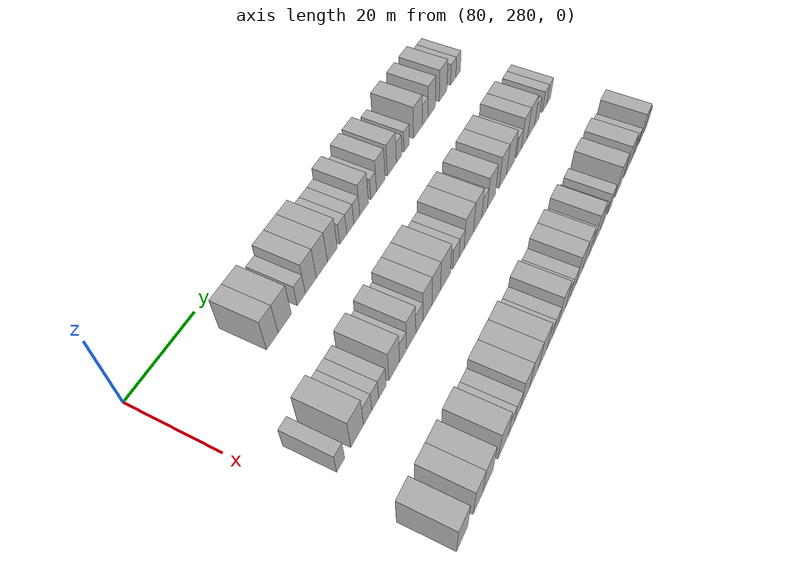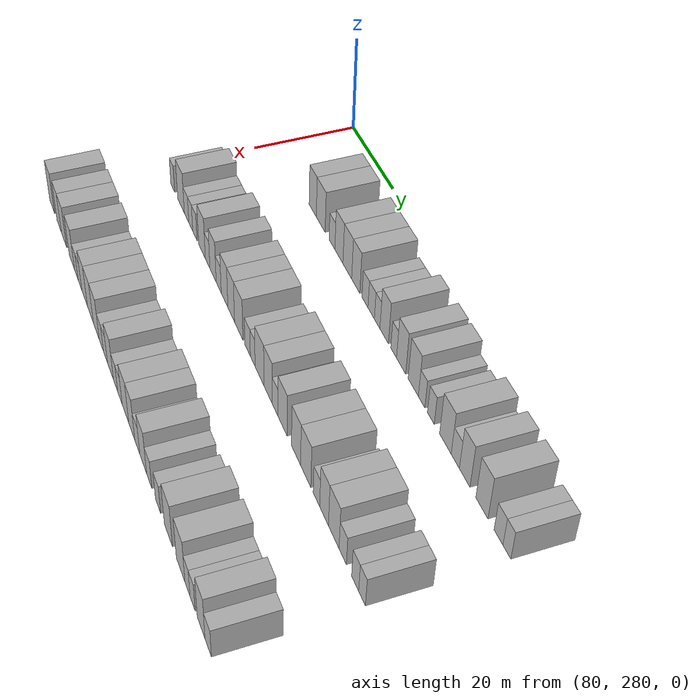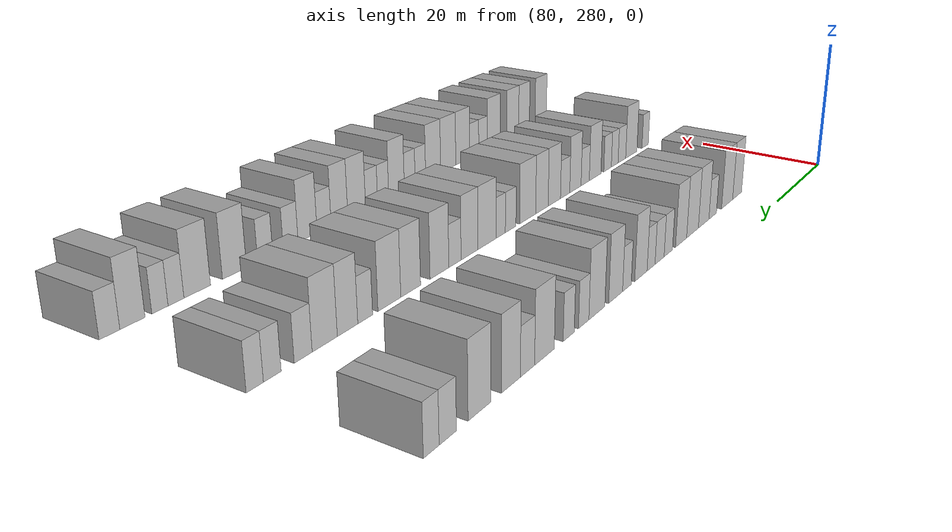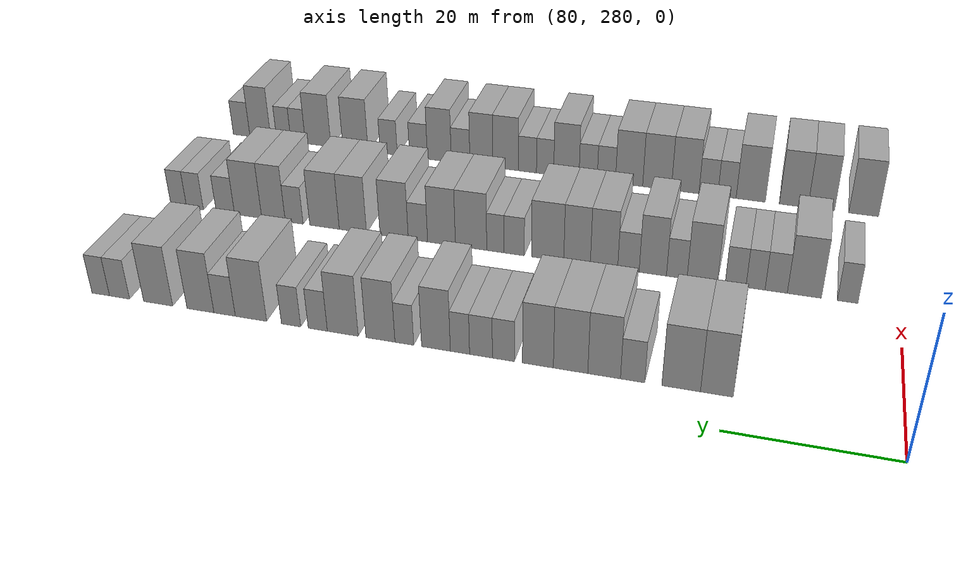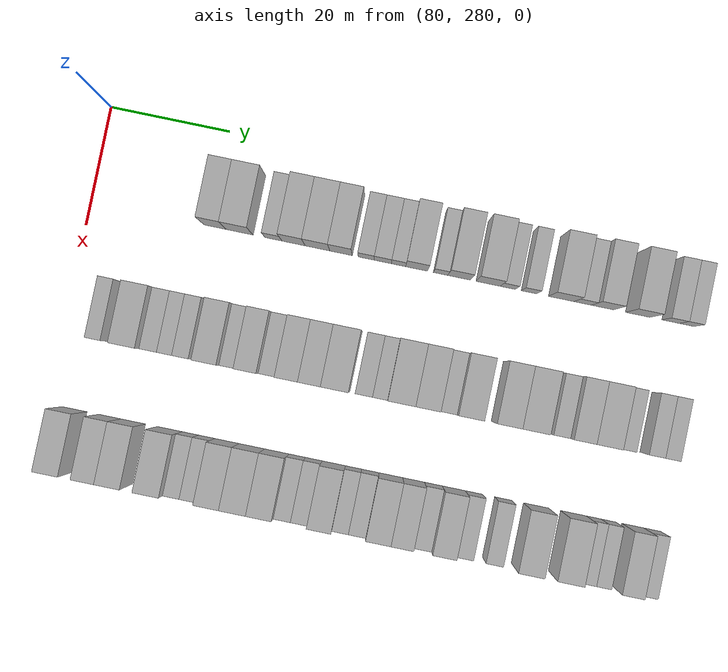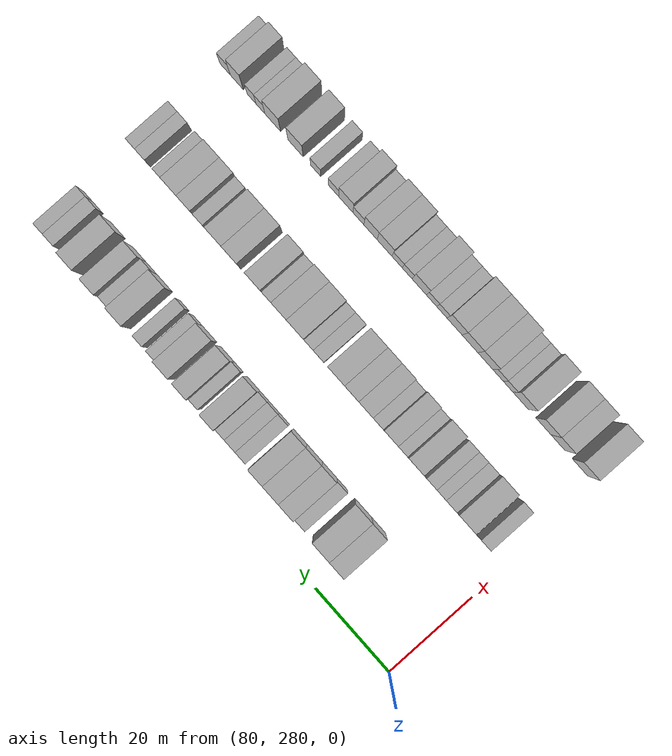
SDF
<sdf version="1.6">
 <world name="default">
  <model name="building_706">
   <static>1</static>
   <pose>91.0000 300.9386 0 0.000000 0.000000 0.000000</pose>
   <link name="link">
    <pose>0 0 4.50 0 0 0</pose>
    <collision name="collision"><geometry><box><size>10.0000 3.7510 9.0000</size></box></geometry></collision>
    <visual name="visual">
     <cast_shadows>0</cast_shadows>
     <geometry><box><size>10.0000 3.7510 9.0000</size></box></geometry>
     <material>
      <script>
       <uri>model://HANNAS_wall/materials/scripts</uri>
       <uri>model://HANNAS_wall/materials/textures</uri>
       <name>vrc/HANNAS_wall</name>
      </script>
     </material>
    </visual>
   </link>
  </model>
  <model name="building_707">
   <static>1</static>
   <pose>91.0000 305.0551 0 0.000000 0.000000 0.000000</pose>
   <link name="link">
    <pose>0 0 4.50 0 0 0</pose>
    <collision name="collision"><geometry><box><size>10.0000 4.4821 9.0000</size></box></geometry></collision>
    <visual name="visual">
     <cast_shadows>0</cast_shadows>
     <geometry><box><size>10.0000 4.4821 9.0000</size></box></geometry>
     <material>
      <script>
       <uri>model://HANNAS_wall/materials/scripts</uri>
       <uri>model://HANNAS_wall/materials/textures</uri>
       <name>vrc/HANNAS_wall</name>
      </script>
     </material>
    </visual>
   </link>
  </model>
  <model name="building_708">
   <static>1</static>
   <pose>91.0000 310.7281 0 0.000000 0.000000 0.000000</pose>
   <link name="link">
    <pose>0 0 3.00 0 0 0</pose>
    <collision name="collision"><geometry><box><size>10.0000 2.8638 6.0000</size></box></geometry></collision>
    <visual name="visual">
     <cast_shadows>0</cast_shadows>
     <geometry><box><size>10.0000 2.8638 6.0000</size></box></geometry>
     <material>
      <script>
       <uri>model://HANNAS_wall/materials/scripts</uri>
       <uri>model://HANNAS_wall/materials/textures</uri>
       <name>vrc/HANNAS_wall</name>
      </script>
     </material>
    </visual>
   </link>
  </model>
  <model name="building_709">
   <static>1</static>
   <pose>91.0000 314.1070 0 0.000000 0.000000 0.000000</pose>
   <link name="link">
    <pose>0 0 4.50 0 0 0</pose>
    <collision name="collision"><geometry><box><size>10.0000 3.8940 9.0000</size></box></geometry></collision>
    <visual name="visual">
     <cast_shadows>0</cast_shadows>
     <geometry><box><size>10.0000 3.8940 9.0000</size></box></geometry>
     <material>
      <script>
       <uri>model://HANNAS_wall/materials/scripts</uri>
       <uri>model://HANNAS_wall/materials/textures</uri>
       <name>vrc/HANNAS_wall</name>
      </script>
     </material>
    </visual>
   </link>
  </model>
  <model name="building_710">
   <static>1</static>
   <pose>91.0000 318.1283 0 0.000000 0.000000 0.000000</pose>
   <link name="link">
    <pose>0 0 4.50 0 0 0</pose>
    <collision name="collision"><geometry><box><size>10.0000 4.1487 9.0000</size></box></geometry></collision>
    <visual name="visual">
     <cast_shadows>0</cast_shadows>
     <geometry><box><size>10.0000 4.1487 9.0000</size></box></geometry>
     <material>
      <script>
       <uri>model://HANNAS_wall/materials/scripts</uri>
       <uri>model://HANNAS_wall/materials/textures</uri>
       <name>vrc/HANNAS_wall</name>
      </script>
     </material>
    </visual>
   </link>
  </model>
  <model name="building_711">
   <static>1</static>
   <pose>91.0000 322.0877 0 0.000000 0.000000 0.000000</pose>
   <link name="link">
    <pose>0 0 4.50 0 0 0</pose>
    <collision name="collision"><geometry><box><size>10.0000 3.7700 9.0000</size></box></geometry></collision>
    <visual name="visual">
     <cast_shadows>0</cast_shadows>
     <geometry><box><size>10.0000 3.7700 9.0000</size></box></geometry>
     <material>
      <script>
       <uri>model://HANNAS_wall/materials/scripts</uri>
       <uri>model://HANNAS_wall/materials/textures</uri>
       <name>vrc/HANNAS_wall</name>
      </script>
     </material>
    </visual>
   </link>
  </model>
  <model name="building_712">
   <static>1</static>
   <pose>91.0000 326.3274 0 0.000000 0.000000 0.000000</pose>
   <link name="link">
    <pose>0 0 3.00 0 0 0</pose>
    <collision name="collision"><geometry><box><size>10.0000 2.7094 6.0000</size></box></geometry></collision>
    <visual name="visual">
     <cast_shadows>0</cast_shadows>
     <geometry><box><size>10.0000 2.7094 6.0000</size></box></geometry>
     <material>
      <script>
       <uri>model://HANNAS_wall/materials/scripts</uri>
       <uri>model://HANNAS_wall/materials/textures</uri>
       <name>vrc/HANNAS_wall</name>
      </script>
     </material>
    </visual>
   </link>
  </model>
  <model name="building_713">
   <static>1</static>
   <pose>91.0000 329.1058 0 0.000000 0.000000 0.000000</pose>
   <link name="link">
    <pose>0 0 3.00 0 0 0</pose>
    <collision name="collision"><geometry><box><size>10.0000 2.8475 6.0000</size></box></geometry></collision>
    <visual name="visual">
     <cast_shadows>0</cast_shadows>
     <geometry><box><size>10.0000 2.8475 6.0000</size></box></geometry>
     <material>
      <script>
       <uri>model://HANNAS_wall/materials/scripts</uri>
       <uri>model://HANNAS_wall/materials/textures</uri>
       <name>vrc/HANNAS_wall</name>
      </script>
     </material>
    </visual>
   </link>
  </model>
  <model name="building_714">
   <static>1</static>
   <pose>91.0000 331.7358 0 0.000000 0.000000 0.000000</pose>
   <link name="link">
    <pose>0 0 3.00 0 0 0</pose>
    <collision name="collision"><geometry><box><size>10.0000 2.4125 6.0000</size></box></geometry></collision>
    <visual name="visual">
     <cast_shadows>0</cast_shadows>
     <geometry><box><size>10.0000 2.4125 6.0000</size></box></geometry>
     <material>
      <script>
       <uri>model://HANNAS_wall/materials/scripts</uri>
       <uri>model://HANNAS_wall/materials/textures</uri>
       <name>vrc/HANNAS_wall</name>
      </script>
     </material>
    </visual>
   </link>
  </model>
  <model name="building_715">
   <static>1</static>
   <pose>91.0000 334.7630 0 0.000000 0.000000 0.000000</pose>
   <link name="link">
    <pose>0 0 4.50 0 0 0</pose>
    <collision name="collision"><geometry><box><size>10.0000 3.6418 9.0000</size></box></geometry></collision>
    <visual name="visual">
     <cast_shadows>0</cast_shadows>
     <geometry><box><size>10.0000 3.6418 9.0000</size></box></geometry>
     <material>
      <script>
       <uri>model://HANNAS_wall/materials/scripts</uri>
       <uri>model://HANNAS_wall/materials/textures</uri>
       <name>vrc/HANNAS_wall</name>
      </script>
     </material>
    </visual>
   </link>
  </model>
  <model name="building_716">
   <static>1</static>
   <pose>91.0000 338.7896 0 0.000000 0.000000 0.000000</pose>
   <link name="link">
    <pose>0 0 3.00 0 0 0</pose>
    <collision name="collision"><geometry><box><size>10.0000 2.4115 6.0000</size></box></geometry></collision>
    <visual name="visual">
     <cast_shadows>0</cast_shadows>
     <geometry><box><size>10.0000 2.4115 6.0000</size></box></geometry>
     <material>
      <script>
       <uri>model://HANNAS_wall/materials/scripts</uri>
       <uri>model://HANNAS_wall/materials/textures</uri>
       <name>vrc/HANNAS_wall</name>
      </script>
     </material>
    </visual>
   </link>
  </model>
  <model name="building_717">
   <static>1</static>
   <pose>91.0000 341.8738 0 0.000000 0.000000 0.000000</pose>
   <link name="link">
    <pose>0 0 4.50 0 0 0</pose>
    <collision name="collision"><geometry><box><size>10.0000 3.7569 9.0000</size></box></geometry></collision>
    <visual name="visual">
     <cast_shadows>0</cast_shadows>
     <geometry><box><size>10.0000 3.7569 9.0000</size></box></geometry>
     <material>
      <script>
       <uri>model://HANNAS_wall/materials/scripts</uri>
       <uri>model://HANNAS_wall/materials/textures</uri>
       <name>vrc/HANNAS_wall</name>
      </script>
     </material>
    </visual>
   </link>
  </model>
  <model name="building_718">
   <static>1</static>
   <pose>91.0000 346.7793 0 0.000000 0.000000 0.000000</pose>
   <link name="link">
    <pose>0 0 4.50 0 0 0</pose>
    <collision name="collision"><geometry><box><size>10.0000 4.0541 9.0000</size></box></geometry></collision>
    <visual name="visual">
     <cast_shadows>0</cast_shadows>
     <geometry><box><size>10.0000 4.0541 9.0000</size></box></geometry>
     <material>
      <script>
       <uri>model://HANNAS_wall/materials/scripts</uri>
       <uri>model://HANNAS_wall/materials/textures</uri>
       <name>vrc/HANNAS_wall</name>
      </script>
     </material>
    </visual>
   </link>
  </model>
  <model name="building_719">
   <static>1</static>
   <pose>91.0000 350.0730 0 0.000000 0.000000 0.000000</pose>
   <link name="link">
    <pose>0 0 3.00 0 0 0</pose>
    <collision name="collision"><geometry><box><size>10.0000 2.5332 6.0000</size></box></geometry></collision>
    <visual name="visual">
     <cast_shadows>0</cast_shadows>
     <geometry><box><size>10.0000 2.5332 6.0000</size></box></geometry>
     <material>
      <script>
       <uri>model://HANNAS_wall/materials/scripts</uri>
       <uri>model://HANNAS_wall/materials/textures</uri>
       <name>vrc/HANNAS_wall</name>
      </script>
     </material>
    </visual>
   </link>
  </model>
  <model name="building_720">
   <static>1</static>
   <pose>91.0000 353.6286 0 0.000000 0.000000 0.000000</pose>
   <link name="link">
    <pose>0 0 3.00 0 0 0</pose>
    <collision name="collision"><geometry><box><size>10.0000 2.5779 6.0000</size></box></geometry></collision>
    <visual name="visual">
     <cast_shadows>0</cast_shadows>
     <geometry><box><size>10.0000 2.5779 6.0000</size></box></geometry>
     <material>
      <script>
       <uri>model://HANNAS_wall/materials/scripts</uri>
       <uri>model://HANNAS_wall/materials/textures</uri>
       <name>vrc/HANNAS_wall</name>
      </script>
     </material>
    </visual>
   </link>
  </model>
  <model name="building_721">
   <static>1</static>
   <pose>91.0000 359.0453 0 0.000000 0.000000 0.000000</pose>
   <link name="link">
    <pose>0 0 4.50 0 0 0</pose>
    <collision name="collision"><geometry><box><size>10.0000 4.2555 9.0000</size></box></geometry></collision>
    <visual name="visual">
     <cast_shadows>0</cast_shadows>
     <geometry><box><size>10.0000 4.2555 9.0000</size></box></geometry>
     <material>
      <script>
       <uri>model://HANNAS_wall/materials/scripts</uri>
       <uri>model://HANNAS_wall/materials/textures</uri>
       <name>vrc/HANNAS_wall</name>
      </script>
     </material>
    </visual>
   </link>
  </model>
  <model name="building_722">
   <static>1</static>
   <pose>91.0000 362.6410 0 0.000000 0.000000 0.000000</pose>
   <link name="link">
    <pose>0 0 3.00 0 0 0</pose>
    <collision name="collision"><geometry><box><size>10.0000 2.9361 6.0000</size></box></geometry></collision>
    <visual name="visual">
     <cast_shadows>0</cast_shadows>
     <geometry><box><size>10.0000 2.9361 6.0000</size></box></geometry>
     <material>
      <script>
       <uri>model://HANNAS_wall/materials/scripts</uri>
       <uri>model://HANNAS_wall/materials/textures</uri>
       <name>vrc/HANNAS_wall</name>
      </script>
     </material>
    </visual>
   </link>
  </model>
  <model name="building_723">
   <static>1</static>
   <pose>91.0000 365.9729 0 0.000000 0.000000 0.000000</pose>
   <link name="link">
    <pose>0 0 4.50 0 0 0</pose>
    <collision name="collision"><geometry><box><size>10.0000 3.7276 9.0000</size></box></geometry></collision>
    <visual name="visual">
     <cast_shadows>0</cast_shadows>
     <geometry><box><size>10.0000 3.7276 9.0000</size></box></geometry>
     <material>
      <script>
       <uri>model://HANNAS_wall/materials/scripts</uri>
       <uri>model://HANNAS_wall/materials/textures</uri>
       <name>vrc/HANNAS_wall</name>
      </script>
     </material>
    </visual>
   </link>
  </model>
  <model name="building_724">
   <static>1</static>
   <pose>91.0000 371.8812 0 0.000000 0.000000 0.000000</pose>
   <link name="link">
    <pose>0 0 4.50 0 0 0</pose>
    <collision name="collision"><geometry><box><size>10.0000 4.0890 9.0000</size></box></geometry></collision>
    <visual name="visual">
     <cast_shadows>0</cast_shadows>
     <geometry><box><size>10.0000 4.0890 9.0000</size></box></geometry>
     <material>
      <script>
       <uri>model://HANNAS_wall/materials/scripts</uri>
       <uri>model://HANNAS_wall/materials/textures</uri>
       <name>vrc/HANNAS_wall</name>
      </script>
     </material>
    </visual>
   </link>
  </model>
  <model name="building_725">
   <static>1</static>
   <pose>91.0000 377.3607 0 0.000000 0.000000 0.000000</pose>
   <link name="link">
    <pose>0 0 3.00 0 0 0</pose>
    <collision name="collision"><geometry><box><size>10.0000 2.8699 6.0000</size></box></geometry></collision>
    <visual name="visual">
     <cast_shadows>0</cast_shadows>
     <geometry><box><size>10.0000 2.8699 6.0000</size></box></geometry>
     <material>
      <script>
       <uri>model://HANNAS_wall/materials/scripts</uri>
       <uri>model://HANNAS_wall/materials/textures</uri>
       <name>vrc/HANNAS_wall</name>
      </script>
     </material>
    </visual>
   </link>
  </model>
  <model name="building_726">
   <static>1</static>
   <pose>91.0000 380.0553 0 0.000000 0.000000 0.000000</pose>
   <link name="link">
    <pose>0 0 3.00 0 0 0</pose>
    <collision name="collision"><geometry><box><size>10.0000 2.5194 6.0000</size></box></geometry></collision>
    <visual name="visual">
     <cast_shadows>0</cast_shadows>
     <geometry><box><size>10.0000 2.5194 6.0000</size></box></geometry>
     <material>
      <script>
       <uri>model://HANNAS_wall/materials/scripts</uri>
       <uri>model://HANNAS_wall/materials/textures</uri>
       <name>vrc/HANNAS_wall</name>
      </script>
     </material>
    </visual>
   </link>
  </model>
  <model name="building_889">
   <static>1</static>
   <pose>113.0000 286.5399 0 0.000000 0.000000 0.000000</pose>
   <link name="link">
    <pose>0 0 3.00 0 0 0</pose>
    <collision name="collision"><geometry><box><size>10.0000 2.5526 6.0000</size></box></geometry></collision>
    <visual name="visual">
     <cast_shadows>0</cast_shadows>
     <geometry><box><size>10.0000 2.5526 6.0000</size></box></geometry>
     <material>
      <script>
       <uri>model://HANNAS_wall/materials/scripts</uri>
       <uri>model://HANNAS_wall/materials/textures</uri>
       <name>vrc/HANNAS_wall</name>
      </script>
     </material>
    </visual>
   </link>
  </model>
  <model name="building_890">
   <static>1</static>
   <pose>113.0000 291.9709 0 0.000000 0.000000 0.000000</pose>
   <link name="link">
    <pose>0 0 4.50 0 0 0</pose>
    <collision name="collision"><geometry><box><size>10.0000 4.3093 9.0000</size></box></geometry></collision>
    <visual name="visual">
     <cast_shadows>0</cast_shadows>
     <geometry><box><size>10.0000 4.3093 9.0000</size></box></geometry>
     <material>
      <script>
       <uri>model://HANNAS_wall/materials/scripts</uri>
       <uri>model://HANNAS_wall/materials/textures</uri>
       <name>vrc/HANNAS_wall</name>
      </script>
     </material>
    </visual>
   </link>
  </model>
  <model name="building_891">
   <static>1</static>
   <pose>113.0000 295.5459 0 0.000000 0.000000 0.000000</pose>
   <link name="link">
    <pose>0 0 3.00 0 0 0</pose>
    <collision name="collision"><geometry><box><size>10.0000 2.8409 6.0000</size></box></geometry></collision>
    <visual name="visual">
     <cast_shadows>0</cast_shadows>
     <geometry><box><size>10.0000 2.8409 6.0000</size></box></geometry>
     <material>
      <script>
       <uri>model://HANNAS_wall/materials/scripts</uri>
       <uri>model://HANNAS_wall/materials/textures</uri>
       <name>vrc/HANNAS_wall</name>
      </script>
     </material>
    </visual>
   </link>
  </model>
  <model name="building_892">
   <static>1</static>
   <pose>113.0000 298.1935 0 0.000000 0.000000 0.000000</pose>
   <link name="link">
    <pose>0 0 3.00 0 0 0</pose>
    <collision name="collision"><geometry><box><size>10.0000 2.4542 6.0000</size></box></geometry></collision>
    <visual name="visual">
     <cast_shadows>0</cast_shadows>
     <geometry><box><size>10.0000 2.4542 6.0000</size></box></geometry>
     <material>
      <script>
       <uri>model://HANNAS_wall/materials/scripts</uri>
       <uri>model://HANNAS_wall/materials/textures</uri>
       <name>vrc/HANNAS_wall</name>
      </script>
     </material>
    </visual>
   </link>
  </model>
  <model name="building_893">
   <static>1</static>
   <pose>113.0000 300.7677 0 0.000000 0.000000 0.000000</pose>
   <link name="link">
    <pose>0 0 3.00 0 0 0</pose>
    <collision name="collision"><geometry><box><size>10.0000 2.6943 6.0000</size></box></geometry></collision>
    <visual name="visual">
     <cast_shadows>0</cast_shadows>
     <geometry><box><size>10.0000 2.6943 6.0000</size></box></geometry>
     <material>
      <script>
       <uri>model://HANNAS_wall/materials/scripts</uri>
       <uri>model://HANNAS_wall/materials/textures</uri>
       <name>vrc/HANNAS_wall</name>
      </script>
     </material>
    </visual>
   </link>
  </model>
  <model name="building_894">
   <static>1</static>
   <pose>113.0000 305.1009 0 0.000000 0.000000 0.000000</pose>
   <link name="link">
    <pose>0 0 4.50 0 0 0</pose>
    <collision name="collision"><geometry><box><size>10.0000 3.9721 9.0000</size></box></geometry></collision>
    <visual name="visual">
     <cast_shadows>0</cast_shadows>
     <geometry><box><size>10.0000 3.9721 9.0000</size></box></geometry>
     <material>
      <script>
       <uri>model://HANNAS_wall/materials/scripts</uri>
       <uri>model://HANNAS_wall/materials/textures</uri>
       <name>vrc/HANNAS_wall</name>
      </script>
     </material>
    </visual>
   </link>
  </model>
  <model name="building_895">
   <static>1</static>
   <pose>113.0000 308.4475 0 0.000000 0.000000 0.000000</pose>
   <link name="link">
    <pose>0 0 3.00 0 0 0</pose>
    <collision name="collision"><geometry><box><size>10.0000 2.7212 6.0000</size></box></geometry></collision>
    <visual name="visual">
     <cast_shadows>0</cast_shadows>
     <geometry><box><size>10.0000 2.7212 6.0000</size></box></geometry>
     <material>
      <script>
       <uri>model://HANNAS_wall/materials/scripts</uri>
       <uri>model://HANNAS_wall/materials/textures</uri>
       <name>vrc/HANNAS_wall</name>
      </script>
     </material>
    </visual>
   </link>
  </model>
  <model name="building_896">
   <static>1</static>
   <pose>113.0000 311.6290 0 0.000000 0.000000 0.000000</pose>
   <link name="link">
    <pose>0 0 4.50 0 0 0</pose>
    <collision name="collision"><geometry><box><size>10.0000 3.6418 9.0000</size></box></geometry></collision>
    <visual name="visual">
     <cast_shadows>0</cast_shadows>
     <geometry><box><size>10.0000 3.6418 9.0000</size></box></geometry>
     <material>
      <script>
       <uri>model://HANNAS_wall/materials/scripts</uri>
       <uri>model://HANNAS_wall/materials/textures</uri>
       <name>vrc/HANNAS_wall</name>
      </script>
     </material>
    </visual>
   </link>
  </model>
  <model name="building_897">
   <static>1</static>
   <pose>113.0000 314.8902 0 0.000000 0.000000 0.000000</pose>
   <link name="link">
    <pose>0 0 3.00 0 0 0</pose>
    <collision name="collision"><geometry><box><size>10.0000 2.8806 6.0000</size></box></geometry></collision>
    <visual name="visual">
     <cast_shadows>0</cast_shadows>
     <geometry><box><size>10.0000 2.8806 6.0000</size></box></geometry>
     <material>
      <script>
       <uri>model://HANNAS_wall/materials/scripts</uri>
       <uri>model://HANNAS_wall/materials/textures</uri>
       <name>vrc/HANNAS_wall</name>
      </script>
     </material>
    </visual>
   </link>
  </model>
  <model name="building_898">
   <static>1</static>
   <pose>113.0000 318.1858 0 0.000000 0.000000 0.000000</pose>
   <link name="link">
    <pose>0 0 4.50 0 0 0</pose>
    <collision name="collision"><geometry><box><size>10.0000 3.7106 9.0000</size></box></geometry></collision>
    <visual name="visual">
     <cast_shadows>0</cast_shadows>
     <geometry><box><size>10.0000 3.7106 9.0000</size></box></geometry>
     <material>
      <script>
       <uri>model://HANNAS_wall/materials/scripts</uri>
       <uri>model://HANNAS_wall/materials/textures</uri>
       <name>vrc/HANNAS_wall</name>
      </script>
     </material>
    </visual>
   </link>
  </model>
  <model name="building_899">
   <static>1</static>
   <pose>113.0000 321.8580 0 0.000000 0.000000 0.000000</pose>
   <link name="link">
    <pose>0 0 4.50 0 0 0</pose>
    <collision name="collision"><geometry><box><size>10.0000 3.6337 9.0000</size></box></geometry></collision>
    <visual name="visual">
     <cast_shadows>0</cast_shadows>
     <geometry><box><size>10.0000 3.6337 9.0000</size></box></geometry>
     <material>
      <script>
       <uri>model://HANNAS_wall/materials/scripts</uri>
       <uri>model://HANNAS_wall/materials/textures</uri>
       <name>vrc/HANNAS_wall</name>
      </script>
     </material>
    </visual>
   </link>
  </model>
  <model name="building_900">
   <static>1</static>
   <pose>113.0000 325.9070 0 0.000000 0.000000 0.000000</pose>
   <link name="link">
    <pose>0 0 4.50 0 0 0</pose>
    <collision name="collision"><geometry><box><size>10.0000 4.4644 9.0000</size></box></geometry></collision>
    <visual name="visual">
     <cast_shadows>0</cast_shadows>
     <geometry><box><size>10.0000 4.4644 9.0000</size></box></geometry>
     <material>
      <script>
       <uri>model://HANNAS_wall/materials/scripts</uri>
       <uri>model://HANNAS_wall/materials/textures</uri>
       <name>vrc/HANNAS_wall</name>
      </script>
     </material>
    </visual>
   </link>
  </model>
  <model name="building_901">
   <static>1</static>
   <pose>113.0000 330.5528 0 0.000000 0.000000 0.000000</pose>
   <link name="link">
    <pose>0 0 3.00 0 0 0</pose>
    <collision name="collision"><geometry><box><size>10.0000 2.8271 6.0000</size></box></geometry></collision>
    <visual name="visual">
     <cast_shadows>0</cast_shadows>
     <geometry><box><size>10.0000 2.8271 6.0000</size></box></geometry>
     <material>
      <script>
       <uri>model://HANNAS_wall/materials/scripts</uri>
       <uri>model://HANNAS_wall/materials/textures</uri>
       <name>vrc/HANNAS_wall</name>
      </script>
     </material>
    </visual>
   </link>
  </model>
  <model name="building_902">
   <static>1</static>
   <pose>113.0000 333.1883 0 0.000000 0.000000 0.000000</pose>
   <link name="link">
    <pose>0 0 3.00 0 0 0</pose>
    <collision name="collision"><geometry><box><size>10.0000 2.4438 6.0000</size></box></geometry></collision>
    <visual name="visual">
     <cast_shadows>0</cast_shadows>
     <geometry><box><size>10.0000 2.4438 6.0000</size></box></geometry>
     <material>
      <script>
       <uri>model://HANNAS_wall/materials/scripts</uri>
       <uri>model://HANNAS_wall/materials/textures</uri>
       <name>vrc/HANNAS_wall</name>
      </script>
     </material>
    </visual>
   </link>
  </model>
  <model name="building_903">
   <static>1</static>
   <pose>113.0000 336.6362 0 0.000000 0.000000 0.000000</pose>
   <link name="link">
    <pose>0 0 4.50 0 0 0</pose>
    <collision name="collision"><geometry><box><size>10.0000 4.4521 9.0000</size></box></geometry></collision>
    <visual name="visual">
     <cast_shadows>0</cast_shadows>
     <geometry><box><size>10.0000 4.4521 9.0000</size></box></geometry>
     <material>
      <script>
       <uri>model://HANNAS_wall/materials/scripts</uri>
       <uri>model://HANNAS_wall/materials/textures</uri>
       <name>vrc/HANNAS_wall</name>
      </script>
     </material>
    </visual>
   </link>
  </model>
  <model name="building_904">
   <static>1</static>
   <pose>113.0000 340.8638 0 0.000000 0.000000 0.000000</pose>
   <link name="link">
    <pose>0 0 4.50 0 0 0</pose>
    <collision name="collision"><geometry><box><size>10.0000 4.0030 9.0000</size></box></geometry></collision>
    <visual name="visual">
     <cast_shadows>0</cast_shadows>
     <geometry><box><size>10.0000 4.0030 9.0000</size></box></geometry>
     <material>
      <script>
       <uri>model://HANNAS_wall/materials/scripts</uri>
       <uri>model://HANNAS_wall/materials/textures</uri>
       <name>vrc/HANNAS_wall</name>
      </script>
     </material>
    </visual>
   </link>
  </model>
  <model name="building_905">
   <static>1</static>
   <pose>113.0000 344.2649 0 0.000000 0.000000 0.000000</pose>
   <link name="link">
    <pose>0 0 3.00 0 0 0</pose>
    <collision name="collision"><geometry><box><size>10.0000 2.7992 6.0000</size></box></geometry></collision>
    <visual name="visual">
     <cast_shadows>0</cast_shadows>
     <geometry><box><size>10.0000 2.7992 6.0000</size></box></geometry>
     <material>
      <script>
       <uri>model://HANNAS_wall/materials/scripts</uri>
       <uri>model://HANNAS_wall/materials/textures</uri>
       <name>vrc/HANNAS_wall</name>
      </script>
     </material>
    </visual>
   </link>
  </model>
  <model name="building_906">
   <static>1</static>
   <pose>113.0000 347.7320 0 0.000000 0.000000 0.000000</pose>
   <link name="link">
    <pose>0 0 4.50 0 0 0</pose>
    <collision name="collision"><geometry><box><size>10.0000 4.1350 9.0000</size></box></geometry></collision>
    <visual name="visual">
     <cast_shadows>0</cast_shadows>
     <geometry><box><size>10.0000 4.1350 9.0000</size></box></geometry>
     <material>
      <script>
       <uri>model://HANNAS_wall/materials/scripts</uri>
       <uri>model://HANNAS_wall/materials/textures</uri>
       <name>vrc/HANNAS_wall</name>
      </script>
     </material>
    </visual>
   </link>
  </model>
  <model name="building_907">
   <static>1</static>
   <pose>113.0000 353.8225 0 0.000000 0.000000 0.000000</pose>
   <link name="link">
    <pose>0 0 4.50 0 0 0</pose>
    <collision name="collision"><geometry><box><size>10.0000 4.0460 9.0000</size></box></geometry></collision>
    <visual name="visual">
     <cast_shadows>0</cast_shadows>
     <geometry><box><size>10.0000 4.0460 9.0000</size></box></geometry>
     <material>
      <script>
       <uri>model://HANNAS_wall/materials/scripts</uri>
       <uri>model://HANNAS_wall/materials/textures</uri>
       <name>vrc/HANNAS_wall</name>
      </script>
     </material>
    </visual>
   </link>
  </model>
  <model name="building_908">
   <static>1</static>
   <pose>113.0000 358.0644 0 0.000000 0.000000 0.000000</pose>
   <link name="link">
    <pose>0 0 4.50 0 0 0</pose>
    <collision name="collision"><geometry><box><size>10.0000 4.4379 9.0000</size></box></geometry></collision>
    <visual name="visual">
     <cast_shadows>0</cast_shadows>
     <geometry><box><size>10.0000 4.4379 9.0000</size></box></geometry>
     <material>
      <script>
       <uri>model://HANNAS_wall/materials/scripts</uri>
       <uri>model://HANNAS_wall/materials/textures</uri>
       <name>vrc/HANNAS_wall</name>
      </script>
     </material>
    </visual>
   </link>
  </model>
  <model name="building_909">
   <static>1</static>
   <pose>113.0000 362.6388 0 0.000000 0.000000 0.000000</pose>
   <link name="link">
    <pose>0 0 3.00 0 0 0</pose>
    <collision name="collision"><geometry><box><size>10.0000 2.7109 6.0000</size></box></geometry></collision>
    <visual name="visual">
     <cast_shadows>0</cast_shadows>
     <geometry><box><size>10.0000 2.7109 6.0000</size></box></geometry>
     <material>
      <script>
       <uri>model://HANNAS_wall/materials/scripts</uri>
       <uri>model://HANNAS_wall/materials/textures</uri>
       <name>vrc/HANNAS_wall</name>
      </script>
     </material>
    </visual>
   </link>
  </model>
  <model name="building_910">
   <static>1</static>
   <pose>113.0000 365.7968 0 0.000000 0.000000 0.000000</pose>
   <link name="link">
    <pose>0 0 4.50 0 0 0</pose>
    <collision name="collision"><geometry><box><size>10.0000 3.6051 9.0000</size></box></geometry></collision>
    <visual name="visual">
     <cast_shadows>0</cast_shadows>
     <geometry><box><size>10.0000 3.6051 9.0000</size></box></geometry>
     <material>
      <script>
       <uri>model://HANNAS_wall/materials/scripts</uri>
       <uri>model://HANNAS_wall/materials/textures</uri>
       <name>vrc/HANNAS_wall</name>
      </script>
     </material>
    </visual>
   </link>
  </model>
  <model name="building_911">
   <static>1</static>
   <pose>113.0000 369.7036 0 0.000000 0.000000 0.000000</pose>
   <link name="link">
    <pose>0 0 4.50 0 0 0</pose>
    <collision name="collision"><geometry><box><size>10.0000 4.2084 9.0000</size></box></geometry></collision>
    <visual name="visual">
     <cast_shadows>0</cast_shadows>
     <geometry><box><size>10.0000 4.2084 9.0000</size></box></geometry>
     <material>
      <script>
       <uri>model://HANNAS_wall/materials/scripts</uri>
       <uri>model://HANNAS_wall/materials/textures</uri>
       <name>vrc/HANNAS_wall</name>
      </script>
     </material>
    </visual>
   </link>
  </model>
  <model name="building_912">
   <static>1</static>
   <pose>113.0000 373.2426 0 0.000000 0.000000 0.000000</pose>
   <link name="link">
    <pose>0 0 3.00 0 0 0</pose>
    <collision name="collision"><geometry><box><size>10.0000 2.8697 6.0000</size></box></geometry></collision>
    <visual name="visual">
     <cast_shadows>0</cast_shadows>
     <geometry><box><size>10.0000 2.8697 6.0000</size></box></geometry>
     <material>
      <script>
       <uri>model://HANNAS_wall/materials/scripts</uri>
       <uri>model://HANNAS_wall/materials/textures</uri>
       <name>vrc/HANNAS_wall</name>
      </script>
     </material>
    </visual>
   </link>
  </model>
  <model name="building_913">
   <static>1</static>
   <pose>113.0000 378.0057 0 0.000000 0.000000 0.000000</pose>
   <link name="link">
    <pose>0 0 3.00 0 0 0</pose>
    <collision name="collision"><geometry><box><size>10.0000 2.6565 6.0000</size></box></geometry></collision>
    <visual name="visual">
     <cast_shadows>0</cast_shadows>
     <geometry><box><size>10.0000 2.6565 6.0000</size></box></geometry>
     <material>
      <script>
       <uri>model://HANNAS_wall/materials/scripts</uri>
       <uri>model://HANNAS_wall/materials/textures</uri>
       <name>vrc/HANNAS_wall</name>
      </script>
     </material>
    </visual>
   </link>
  </model>
  <model name="building_914">
   <static>1</static>
   <pose>113.0000 380.5769 0 0.000000 0.000000 0.000000</pose>
   <link name="link">
    <pose>0 0 3.00 0 0 0</pose>
    <collision name="collision"><geometry><box><size>10.0000 2.4858 6.0000</size></box></geometry></collision>
    <visual name="visual">
     <cast_shadows>0</cast_shadows>
     <geometry><box><size>10.0000 2.4858 6.0000</size></box></geometry>
     <material>
      <script>
       <uri>model://HANNAS_wall/materials/scripts</uri>
       <uri>model://HANNAS_wall/materials/textures</uri>
       <name>vrc/HANNAS_wall</name>
      </script>
     </material>
    </visual>
   </link>
  </model>
  <model name="building_1078">
   <static>1</static>
   <pose>135.0000 284.5594 0 0.000000 0.000000 0.000000</pose>
   <link name="link">
    <pose>0 0 4.50 0 0 0</pose>
    <collision name="collision"><geometry><box><size>10.0000 4.1253 9.0000</size></box></geometry></collision>
    <visual name="visual">
     <cast_shadows>0</cast_shadows>
     <geometry><box><size>10.0000 4.1253 9.0000</size></box></geometry>
     <material>
      <script>
       <uri>model://HANNAS_wall/materials/scripts</uri>
       <uri>model://HANNAS_wall/materials/textures</uri>
       <name>vrc/HANNAS_wall</name>
      </script>
     </material>
    </visual>
   </link>
  </model>
  <model name="building_1079">
   <static>1</static>
   <pose>135.0000 290.4889 0 0.000000 0.000000 0.000000</pose>
   <link name="link">
    <pose>0 0 4.50 0 0 0</pose>
    <collision name="collision"><geometry><box><size>10.0000 3.7337 9.0000</size></box></geometry></collision>
    <visual name="visual">
     <cast_shadows>0</cast_shadows>
     <geometry><box><size>10.0000 3.7337 9.0000</size></box></geometry>
     <material>
      <script>
       <uri>model://HANNAS_wall/materials/scripts</uri>
       <uri>model://HANNAS_wall/materials/textures</uri>
       <name>vrc/HANNAS_wall</name>
      </script>
     </material>
    </visual>
   </link>
  </model>
  <model name="building_1080">
   <static>1</static>
   <pose>135.0000 294.3924 0 0.000000 0.000000 0.000000</pose>
   <link name="link">
    <pose>0 0 4.50 0 0 0</pose>
    <collision name="collision"><geometry><box><size>10.0000 4.0733 9.0000</size></box></geometry></collision>
    <visual name="visual">
     <cast_shadows>0</cast_shadows>
     <geometry><box><size>10.0000 4.0733 9.0000</size></box></geometry>
     <material>
      <script>
       <uri>model://HANNAS_wall/materials/scripts</uri>
       <uri>model://HANNAS_wall/materials/textures</uri>
       <name>vrc/HANNAS_wall</name>
      </script>
     </material>
    </visual>
   </link>
  </model>
  <model name="building_1081">
   <static>1</static>
   <pose>135.0000 300.5366 0 0.000000 0.000000 0.000000</pose>
   <link name="link">
    <pose>0 0 4.50 0 0 0</pose>
    <collision name="collision"><geometry><box><size>10.0000 4.2152 9.0000</size></box></geometry></collision>
    <visual name="visual">
     <cast_shadows>0</cast_shadows>
     <geometry><box><size>10.0000 4.2152 9.0000</size></box></geometry>
     <material>
      <script>
       <uri>model://HANNAS_wall/materials/scripts</uri>
       <uri>model://HANNAS_wall/materials/textures</uri>
       <name>vrc/HANNAS_wall</name>
      </script>
     </material>
    </visual>
   </link>
  </model>
  <model name="building_1082">
   <static>1</static>
   <pose>135.0000 303.9772 0 0.000000 0.000000 0.000000</pose>
   <link name="link">
    <pose>0 0 3.00 0 0 0</pose>
    <collision name="collision"><geometry><box><size>10.0000 2.6659 6.0000</size></box></geometry></collision>
    <visual name="visual">
     <cast_shadows>0</cast_shadows>
     <geometry><box><size>10.0000 2.6659 6.0000</size></box></geometry>
     <material>
      <script>
       <uri>model://HANNAS_wall/materials/scripts</uri>
       <uri>model://HANNAS_wall/materials/textures</uri>
       <name>vrc/HANNAS_wall</name>
      </script>
     </material>
    </visual>
   </link>
  </model>
  <model name="building_1083">
   <static>1</static>
   <pose>135.0000 306.6893 0 0.000000 0.000000 0.000000</pose>
   <link name="link">
    <pose>0 0 3.00 0 0 0</pose>
    <collision name="collision"><geometry><box><size>10.0000 2.7585 6.0000</size></box></geometry></collision>
    <visual name="visual">
     <cast_shadows>0</cast_shadows>
     <geometry><box><size>10.0000 2.7585 6.0000</size></box></geometry>
     <material>
      <script>
       <uri>model://HANNAS_wall/materials/scripts</uri>
       <uri>model://HANNAS_wall/materials/textures</uri>
       <name>vrc/HANNAS_wall</name>
      </script>
     </material>
    </visual>
   </link>
  </model>
  <model name="building_1084">
   <static>1</static>
   <pose>135.0000 310.1051 0 0.000000 0.000000 0.000000</pose>
   <link name="link">
    <pose>0 0 4.50 0 0 0</pose>
    <collision name="collision"><geometry><box><size>10.0000 4.0730 9.0000</size></box></geometry></collision>
    <visual name="visual">
     <cast_shadows>0</cast_shadows>
     <geometry><box><size>10.0000 4.0730 9.0000</size></box></geometry>
     <material>
      <script>
       <uri>model://HANNAS_wall/materials/scripts</uri>
       <uri>model://HANNAS_wall/materials/textures</uri>
       <name>vrc/HANNAS_wall</name>
      </script>
     </material>
    </visual>
   </link>
  </model>
  <model name="building_1085">
   <static>1</static>
   <pose>135.0000 314.2787 0 0.000000 0.000000 0.000000</pose>
   <link name="link">
    <pose>0 0 4.50 0 0 0</pose>
    <collision name="collision"><geometry><box><size>10.0000 4.2742 9.0000</size></box></geometry></collision>
    <visual name="visual">
     <cast_shadows>0</cast_shadows>
     <geometry><box><size>10.0000 4.2742 9.0000</size></box></geometry>
     <material>
      <script>
       <uri>model://HANNAS_wall/materials/scripts</uri>
       <uri>model://HANNAS_wall/materials/textures</uri>
       <name>vrc/HANNAS_wall</name>
      </script>
     </material>
    </visual>
   </link>
  </model>
  <model name="building_1086">
   <static>1</static>
   <pose>135.0000 318.4640 0 0.000000 0.000000 0.000000</pose>
   <link name="link">
    <pose>0 0 4.50 0 0 0</pose>
    <collision name="collision"><geometry><box><size>10.0000 4.0964 9.0000</size></box></geometry></collision>
    <visual name="visual">
     <cast_shadows>0</cast_shadows>
     <geometry><box><size>10.0000 4.0964 9.0000</size></box></geometry>
     <material>
      <script>
       <uri>model://HANNAS_wall/materials/scripts</uri>
       <uri>model://HANNAS_wall/materials/textures</uri>
       <name>vrc/HANNAS_wall</name>
      </script>
     </material>
    </visual>
   </link>
  </model>
  <model name="building_1087">
   <static>1</static>
   <pose>135.0000 321.8972 0 0.000000 0.000000 0.000000</pose>
   <link name="link">
    <pose>0 0 3.00 0 0 0</pose>
    <collision name="collision"><geometry><box><size>10.0000 2.7700 6.0000</size></box></geometry></collision>
    <visual name="visual">
     <cast_shadows>0</cast_shadows>
     <geometry><box><size>10.0000 2.7700 6.0000</size></box></geometry>
     <material>
      <script>
       <uri>model://HANNAS_wall/materials/scripts</uri>
       <uri>model://HANNAS_wall/materials/textures</uri>
       <name>vrc/HANNAS_wall</name>
      </script>
     </material>
    </visual>
   </link>
  </model>
  <model name="building_1088">
   <static>1</static>
   <pose>135.0000 324.6702 0 0.000000 0.000000 0.000000</pose>
   <link name="link">
    <pose>0 0 3.00 0 0 0</pose>
    <collision name="collision"><geometry><box><size>10.0000 2.7758 6.0000</size></box></geometry></collision>
    <visual name="visual">
     <cast_shadows>0</cast_shadows>
     <geometry><box><size>10.0000 2.7758 6.0000</size></box></geometry>
     <material>
      <script>
       <uri>model://HANNAS_wall/materials/scripts</uri>
       <uri>model://HANNAS_wall/materials/textures</uri>
       <name>vrc/HANNAS_wall</name>
      </script>
     </material>
    </visual>
   </link>
  </model>
  <model name="building_1089">
   <static>1</static>
   <pose>135.0000 328.0061 0 0.000000 0.000000 0.000000</pose>
   <link name="link">
    <pose>0 0 4.50 0 0 0</pose>
    <collision name="collision"><geometry><box><size>10.0000 3.8960 9.0000</size></box></geometry></collision>
    <visual name="visual">
     <cast_shadows>0</cast_shadows>
     <geometry><box><size>10.0000 3.8960 9.0000</size></box></geometry>
     <material>
      <script>
       <uri>model://HANNAS_wall/materials/scripts</uri>
       <uri>model://HANNAS_wall/materials/textures</uri>
       <name>vrc/HANNAS_wall</name>
      </script>
     </material>
    </visual>
   </link>
  </model>
  <model name="building_1090">
   <static>1</static>
   <pose>135.0000 331.2939 0 0.000000 0.000000 0.000000</pose>
   <link name="link">
    <pose>0 0 3.00 0 0 0</pose>
    <collision name="collision"><geometry><box><size>10.0000 2.6796 6.0000</size></box></geometry></collision>
    <visual name="visual">
     <cast_shadows>0</cast_shadows>
     <geometry><box><size>10.0000 2.6796 6.0000</size></box></geometry>
     <material>
      <script>
       <uri>model://HANNAS_wall/materials/scripts</uri>
       <uri>model://HANNAS_wall/materials/textures</uri>
       <name>vrc/HANNAS_wall</name>
      </script>
     </material>
    </visual>
   </link>
  </model>
  <model name="building_1091">
   <static>1</static>
   <pose>135.0000 334.0432 0 0.000000 0.000000 0.000000</pose>
   <link name="link">
    <pose>0 0 3.00 0 0 0</pose>
    <collision name="collision"><geometry><box><size>10.0000 2.8189 6.0000</size></box></geometry></collision>
    <visual name="visual">
     <cast_shadows>0</cast_shadows>
     <geometry><box><size>10.0000 2.8189 6.0000</size></box></geometry>
     <material>
      <script>
       <uri>model://HANNAS_wall/materials/scripts</uri>
       <uri>model://HANNAS_wall/materials/textures</uri>
       <name>vrc/HANNAS_wall</name>
      </script>
     </material>
    </visual>
   </link>
  </model>
  <model name="building_1092">
   <static>1</static>
   <pose>135.0000 337.4684 0 0.000000 0.000000 0.000000</pose>
   <link name="link">
    <pose>0 0 4.50 0 0 0</pose>
    <collision name="collision"><geometry><box><size>10.0000 4.0315 9.0000</size></box></geometry></collision>
    <visual name="visual">
     <cast_shadows>0</cast_shadows>
     <geometry><box><size>10.0000 4.0315 9.0000</size></box></geometry>
     <material>
      <script>
       <uri>model://HANNAS_wall/materials/scripts</uri>
       <uri>model://HANNAS_wall/materials/textures</uri>
       <name>vrc/HANNAS_wall</name>
      </script>
     </material>
    </visual>
   </link>
  </model>
  <model name="building_1093">
   <static>1</static>
   <pose>135.0000 341.2988 0 0.000000 0.000000 0.000000</pose>
   <link name="link">
    <pose>0 0 4.50 0 0 0</pose>
    <collision name="collision"><geometry><box><size>10.0000 3.6294 9.0000</size></box></geometry></collision>
    <visual name="visual">
     <cast_shadows>0</cast_shadows>
     <geometry><box><size>10.0000 3.6294 9.0000</size></box></geometry>
     <material>
      <script>
       <uri>model://HANNAS_wall/materials/scripts</uri>
       <uri>model://HANNAS_wall/materials/textures</uri>
       <name>vrc/HANNAS_wall</name>
      </script>
     </material>
    </visual>
   </link>
  </model>
  <model name="building_1094">
   <static>1</static>
   <pose>135.0000 344.6013 0 0.000000 0.000000 0.000000</pose>
   <link name="link">
    <pose>0 0 3.00 0 0 0</pose>
    <collision name="collision"><geometry><box><size>10.0000 2.9755 6.0000</size></box></geometry></collision>
    <visual name="visual">
     <cast_shadows>0</cast_shadows>
     <geometry><box><size>10.0000 2.9755 6.0000</size></box></geometry>
     <material>
      <script>
       <uri>model://HANNAS_wall/materials/scripts</uri>
       <uri>model://HANNAS_wall/materials/textures</uri>
       <name>vrc/HANNAS_wall</name>
      </script>
     </material>
    </visual>
   </link>
  </model>
  <model name="building_1095">
   <static>1</static>
   <pose>135.0000 348.0156 0 0.000000 0.000000 0.000000</pose>
   <link name="link">
    <pose>0 0 4.50 0 0 0</pose>
    <collision name="collision"><geometry><box><size>10.0000 3.8531 9.0000</size></box></geometry></collision>
    <visual name="visual">
     <cast_shadows>0</cast_shadows>
     <geometry><box><size>10.0000 3.8531 9.0000</size></box></geometry>
     <material>
      <script>
       <uri>model://HANNAS_wall/materials/scripts</uri>
       <uri>model://HANNAS_wall/materials/textures</uri>
       <name>vrc/HANNAS_wall</name>
      </script>
     </material>
    </visual>
   </link>
  </model>
  <model name="building_1096">
   <static>1</static>
   <pose>135.0000 351.3958 0 0.000000 0.000000 0.000000</pose>
   <link name="link">
    <pose>0 0 3.00 0 0 0</pose>
    <collision name="collision"><geometry><box><size>10.0000 2.9074 6.0000</size></box></geometry></collision>
    <visual name="visual">
     <cast_shadows>0</cast_shadows>
     <geometry><box><size>10.0000 2.9074 6.0000</size></box></geometry>
     <material>
      <script>
       <uri>model://HANNAS_wall/materials/scripts</uri>
       <uri>model://HANNAS_wall/materials/textures</uri>
       <name>vrc/HANNAS_wall</name>
      </script>
     </material>
    </visual>
   </link>
  </model>
  <model name="building_1097">
   <static>1</static>
   <pose>135.0000 356.2566 0 0.000000 0.000000 0.000000</pose>
   <link name="link">
    <pose>0 0 3.00 0 0 0</pose>
    <collision name="collision"><geometry><box><size>10.0000 2.8142 6.0000</size></box></geometry></collision>
    <visual name="visual">
     <cast_shadows>0</cast_shadows>
     <geometry><box><size>10.0000 2.8142 6.0000</size></box></geometry>
     <material>
      <script>
       <uri>model://HANNAS_wall/materials/scripts</uri>
       <uri>model://HANNAS_wall/materials/textures</uri>
       <name>vrc/HANNAS_wall</name>
      </script>
     </material>
    </visual>
   </link>
  </model>
  <model name="building_1098">
   <static>1</static>
   <pose>135.0000 361.7608 0 0.000000 0.000000 0.000000</pose>
   <link name="link">
    <pose>0 0 4.50 0 0 0</pose>
    <collision name="collision"><geometry><box><size>10.0000 4.1942 9.0000</size></box></geometry></collision>
    <visual name="visual">
     <cast_shadows>0</cast_shadows>
     <geometry><box><size>10.0000 4.1942 9.0000</size></box></geometry>
     <material>
      <script>
       <uri>model://HANNAS_wall/materials/scripts</uri>
       <uri>model://HANNAS_wall/materials/textures</uri>
       <name>vrc/HANNAS_wall</name>
      </script>
     </material>
    </visual>
   </link>
  </model>
  <model name="building_1099">
   <static>1</static>
   <pose>135.0000 368.0067 0 0.000000 0.000000 0.000000</pose>
   <link name="link">
    <pose>0 0 4.50 0 0 0</pose>
    <collision name="collision"><geometry><box><size>10.0000 4.2976 9.0000</size></box></geometry></collision>
    <visual name="visual">
     <cast_shadows>0</cast_shadows>
     <geometry><box><size>10.0000 4.2976 9.0000</size></box></geometry>
     <material>
      <script>
       <uri>model://HANNAS_wall/materials/scripts</uri>
       <uri>model://HANNAS_wall/materials/textures</uri>
       <name>vrc/HANNAS_wall</name>
      </script>
     </material>
    </visual>
   </link>
  </model>
  <model name="building_1100">
   <static>1</static>
   <pose>135.0000 371.3908 0 0.000000 0.000000 0.000000</pose>
   <link name="link">
    <pose>0 0 3.00 0 0 0</pose>
    <collision name="collision"><geometry><box><size>10.0000 2.4706 6.0000</size></box></geometry></collision>
    <visual name="visual">
     <cast_shadows>0</cast_shadows>
     <geometry><box><size>10.0000 2.4706 6.0000</size></box></geometry>
     <material>
      <script>
       <uri>model://HANNAS_wall/materials/scripts</uri>
       <uri>model://HANNAS_wall/materials/textures</uri>
       <name>vrc/HANNAS_wall</name>
      </script>
     </material>
    </visual>
   </link>
  </model>
  <model name="building_1101">
   <static>1</static>
   <pose>135.0000 373.8476 0 0.000000 0.000000 0.000000</pose>
   <link name="link">
    <pose>0 0 3.00 0 0 0</pose>
    <collision name="collision"><geometry><box><size>10.0000 2.4430 6.0000</size></box></geometry></collision>
    <visual name="visual">
     <cast_shadows>0</cast_shadows>
     <geometry><box><size>10.0000 2.4430 6.0000</size></box></geometry>
     <material>
      <script>
       <uri>model://HANNAS_wall/materials/scripts</uri>
       <uri>model://HANNAS_wall/materials/textures</uri>
       <name>vrc/HANNAS_wall</name>
      </script>
     </material>
    </visual>
   </link>
  </model>
  <model name="building_1102">
   <static>1</static>
   <pose>135.0000 377.8714 0 0.000000 0.000000 0.000000</pose>
   <link name="link">
    <pose>0 0 4.50 0 0 0</pose>
    <collision name="collision"><geometry><box><size>10.0000 3.6046 9.0000</size></box></geometry></collision>
    <visual name="visual">
     <cast_shadows>0</cast_shadows>
     <geometry><box><size>10.0000 3.6046 9.0000</size></box></geometry>
     <material>
      <script>
       <uri>model://HANNAS_wall/materials/scripts</uri>
       <uri>model://HANNAS_wall/materials/textures</uri>
       <name>vrc/HANNAS_wall</name>
      </script>
     </material>
    </visual>
   </link>
  </model>
  <model name="building_1103">
   <static>1</static>
   <pose>135.0000 381.1094 0 0.000000 0.000000 0.000000</pose>
   <link name="link">
    <pose>0 0 3.00 0 0 0</pose>
    <collision name="collision"><geometry><box><size>10.0000 2.8715 6.0000</size></box></geometry></collision>
    <visual name="visual">
     <cast_shadows>0</cast_shadows>
     <geometry><box><size>10.0000 2.8715 6.0000</size></box></geometry>
     <material>
      <script>
       <uri>model://HANNAS_wall/materials/scripts</uri>
       <uri>model://HANNAS_wall/materials/textures</uri>
       <name>vrc/HANNAS_wall</name>
      </script>
     </material>
    </visual>
   </link>
  </model>
 </world>
</sdf>
